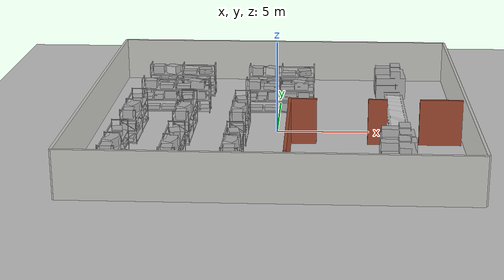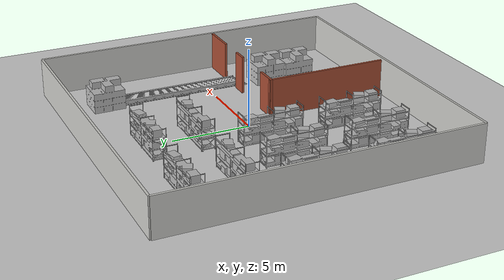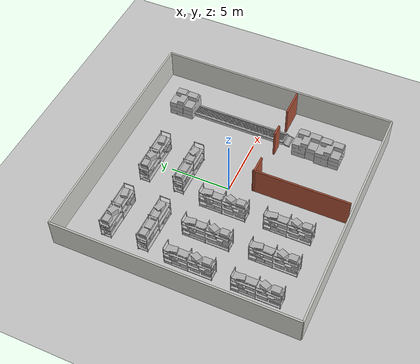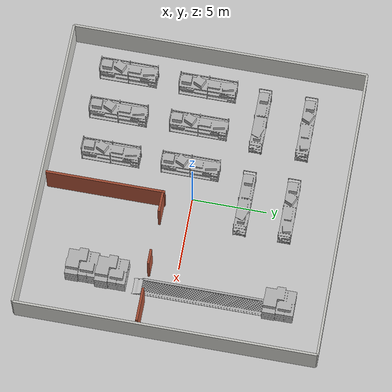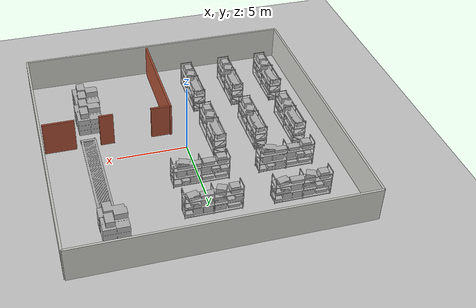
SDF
<sdf version="1.7">
 <world name="default">
  <model name="ground_plane">
   <static>1</static>
   <link name="link">
    <collision name="collision">
     <geometry><plane><normal>0 0 1</normal><size>100 100</size></plane></geometry>
     <surface><friction><ode><mu>100</mu><mu2>50</mu2></ode></friction></surface>
    </collision>
    <visual name="visual">
     <cast_shadows>0</cast_shadows>
     <geometry><plane><normal>0 0 1</normal><size>100 100</size></plane></geometry>
     <material>
      <script><uri>file://media/materials/scripts/gazebo.material</uri><name>Gazebo/Grey</name></script>
     </material>
    </visual>
   </link>
  </model>
  <model name="shipping_container_conveyor_ariac">
   <static>1</static>
   <link name="link">
    <collision name="collision_belt_side_front">
     <pose>1.191 1.6275 0.32 0 -0 0</pose>
     <geometry><box><size>0.137 7.98 0.3</size></box></geometry>
    </collision>
    <collision name="collision_belt_side_back">
     <pose>0.268 1.6275 0.32 0 -0 0</pose>
     <geometry><box><size>0.145 7.98 0.3</size></box></geometry>
    </collision>
    <visual name="visual">
     <geometry>
      <mesh>
       <scale>1.3 0.7 1</scale>
       <uri>model://sim_env/models/shipping_container_conveyor_ariac/meshes/ShippingContainer_Textured.obj</uri>
      </mesh>
     </geometry>
    </visual>
   </link>
   <pose>5.94716 0.254888 -0.15 0 -0 0</pose>
  </model>
  <model name="aws_robomaker_warehouse_ClutteringC_01">
   <link name="link">
    <inertial>
     <mass>1</mass>
     <inertia><ixx>1.558</ixx><ixy>0</ixy><ixz>0</ixz><iyy>1.821</iyy><iyz>0</iyz><izz>1.892</izz></inertia>
    </inertial>
    <collision name="collision">
     <geometry>
      <mesh>
       <uri>model://sim_env/models/aws_robomaker_warehouse_ClutteringC_01/meshes/aws_robomaker_warehouse_ClutteringC_01_collision.DAE</uri>
       <scale>1 1 1</scale>
      </mesh>
     </geometry>
     <surface>
      <friction>
       <ode><mu>0.6</mu><mu2>0.6</mu2><fdir1>0 0 0</fdir1><slip1>0</slip1><slip2>0</slip2></ode>
       <torsional>
        <coefficient>1</coefficient>
        <patch_radius>0</patch_radius>
        <surface_radius>0</surface_radius>
        <use_patch_radius>1</use_patch_radius>
        <ode><slip>0</slip></ode>
       </torsional>
      </friction>
     </surface>
    </collision>
    <visual name="visual">
     <geometry>
      <mesh>
       <uri>model://sim_env/models/aws_robomaker_warehouse_ClutteringC_01/meshes/aws_robomaker_warehouse_ClutteringC_01_visual.DAE</uri>
      </mesh>
     </geometry>
     <meta><layer>1</layer></meta>
    </visual>
   </link>
   <static>1</static>
   <pose>6.33701 -4.2 0 0 -0 0</pose>
  </model>
  <model name="aws_robomaker_warehouse_ShelfE_01">
   <link name="link">
    <inertial>
     <mass>30</mass>
     <inertia><ixx>907.144</ixx><ixy>0</ixy><ixz>0</ixz><iyy>104.95</iyy><iyz>0</iyz><izz>824.248</izz></inertia>
    </inertial>
    <collision name="collision">
     <geometry>
      <mesh>
       <uri>model://sim_env/models/aws_robomaker_warehouse_ShelfE_01/meshes/aws_robomaker_warehouse_ShelfE_01_collision.DAE</uri>
       <scale>1 1 1</scale>
      </mesh>
     </geometry>
     <surface>
      <friction><ode><mu>0.2</mu><mu2>0.2</mu2><fdir1>0 0 0</fdir1><slip1>0</slip1><slip2>0</slip2></ode></friction>
     </surface>
    </collision>
    <visual name="visual">
     <geometry>
      <mesh>
       <uri>model://sim_env/models/aws_robomaker_warehouse_ShelfE_01/meshes/aws_robomaker_warehouse_ShelfE_01_visual.DAE</uri>
      </mesh>
     </geometry>
     <meta><layer>1</layer></meta>
    </visual>
   </link>
   <static>1</static>
   <pose>-6 3.5 -0.7 0 -0 0</pose>
  </model>
  <model name="aws_robomaker_warehouse_ShelfE_01_0">
   <link name="link">
    <inertial>
     <mass>30</mass>
     <inertia><ixx>907.144</ixx><ixy>0</ixy><ixz>0</ixz><iyy>104.95</iyy><iyz>0</iyz><izz>824.248</izz></inertia>
    </inertial>
    <collision name="collision">
     <geometry>
      <mesh>
       <uri>model://sim_env/models/aws_robomaker_warehouse_ShelfE_01/meshes/aws_robomaker_warehouse_ShelfE_01_collision.DAE</uri>
       <scale>1 1 1</scale>
      </mesh>
     </geometry>
     <surface>
      <friction><ode><mu>0.2</mu><mu2>0.2</mu2><fdir1>0 0 0</fdir1><slip1>0</slip1><slip2>0</slip2></ode></friction>
     </surface>
    </collision>
    <visual name="visual">
     <geometry>
      <mesh>
       <uri>model://sim_env/models/aws_robomaker_warehouse_ShelfE_01/meshes/aws_robomaker_warehouse_ShelfE_01_visual.DAE</uri>
      </mesh>
     </geometry>
     <meta><layer>1</layer></meta>
    </visual>
   </link>
   <static>1</static>
   <pose>0 3.5 -0.7 0 -0 0</pose>
  </model>
  <model name="aws_robomaker_warehouse_ShelfD_01">
   <link name="link">
    <inertial>
     <mass>30</mass>
     <inertia><ixx>907.144</ixx><ixy>0</ixy><ixz>0</ixz><iyy>104.95</iyy><iyz>0</iyz><izz>824.248</izz></inertia>
    </inertial>
    <collision name="collision">
     <geometry>
      <mesh>
       <uri>model://sim_env/models/aws_robomaker_warehouse_ShelfD_01/meshes/aws_robomaker_warehouse_ShelfD_01_collision.DAE</uri>
       <scale>1 1 1</scale>
      </mesh>
     </geometry>
     <surface>
      <friction><ode><mu>0.2</mu><mu2>0.2</mu2><fdir1>0 0 0</fdir1><slip1>0</slip1><slip2>0</slip2></ode></friction>
     </surface>
    </collision>
    <visual name="visual">
     <geometry>
      <mesh>
       <uri>model://sim_env/models/aws_robomaker_warehouse_ShelfD_01/meshes/aws_robomaker_warehouse_ShelfD_01_visual.DAE</uri>
      </mesh>
     </geometry>
     <meta><layer>1</layer></meta>
    </visual>
   </link>
   <static>1</static>
   <pose>-6 6.63287 -0.7 0 -0 0</pose>
  </model>
  <model name="aws_robomaker_warehouse_ShelfD_01_0">
   <link name="link">
    <inertial>
     <mass>30</mass>
     <inertia><ixx>907.144</ixx><ixy>0</ixy><ixz>0</ixz><iyy>104.95</iyy><iyz>0</iyz><izz>824.248</izz></inertia>
    </inertial>
    <collision name="collision">
     <geometry>
      <mesh>
       <uri>model://sim_env/models/aws_robomaker_warehouse_ShelfD_01/meshes/aws_robomaker_warehouse_ShelfD_01_collision.DAE</uri>
       <scale>1 1 1</scale>
      </mesh>
     </geometry>
     <surface>
      <friction><ode><mu>0.2</mu><mu2>0.2</mu2><fdir1>0 0 0</fdir1><slip1>0</slip1><slip2>0</slip2></ode></friction>
     </surface>
    </collision>
    <visual name="visual">
     <geometry>
      <mesh>
       <uri>model://sim_env/models/aws_robomaker_warehouse_ShelfD_01/meshes/aws_robomaker_warehouse_ShelfD_01_visual.DAE</uri>
      </mesh>
     </geometry>
     <meta><layer>1</layer></meta>
    </visual>
   </link>
   <static>1</static>
   <pose>0 6.5 -0.7 0 -0 0</pose>
  </model>
  <model name="aws_robomaker_warehouse_ShelfD_01_1">
   <link name="link">
    <inertial>
     <mass>30</mass>
     <inertia><ixx>907.144</ixx><ixy>0</ixy><ixz>0</ixz><iyy>104.95</iyy><iyz>0</iyz><izz>824.248</izz></inertia>
    </inertial>
    <collision name="collision">
     <geometry>
      <mesh>
       <uri>model://sim_env/models/aws_robomaker_warehouse_ShelfD_01/meshes/aws_robomaker_warehouse_ShelfD_01_collision.DAE</uri>
       <scale>1 1 1</scale>
      </mesh>
     </geometry>
     <surface>
      <friction><ode><mu>0.2</mu><mu2>0.2</mu2><fdir1>0 0 0</fdir1><slip1>0</slip1><slip2>0</slip2></ode></friction>
     </surface>
    </collision>
    <visual name="visual">
     <geometry>
      <mesh>
       <uri>model://sim_env/models/aws_robomaker_warehouse_ShelfD_01/meshes/aws_robomaker_warehouse_ShelfD_01_visual.DAE</uri>
      </mesh>
     </geometry>
     <meta><layer>1</layer></meta>
    </visual>
   </link>
   <static>1</static>
   <pose>-2 -0.5 -0.7 0 -0 1.57</pose>
  </model>
  <model name="aws_robomaker_warehouse_ShelfD_01_1_clone">
   <link name="link">
    <inertial>
     <mass>30</mass>
     <inertia><ixx>907.144</ixx><ixy>0</ixy><ixz>0</ixz><iyy>104.95</iyy><iyz>0</iyz><izz>824.248</izz></inertia>
    </inertial>
    <collision name="collision">
     <geometry>
      <mesh>
       <uri>model://sim_env/models/aws_robomaker_warehouse_ShelfD_01/meshes/aws_robomaker_warehouse_ShelfD_01_collision.DAE</uri>
       <scale>1 1 1</scale>
      </mesh>
     </geometry>
     <surface>
      <friction><ode><mu>0.2</mu><mu2>0.2</mu2><fdir1>0 0 0</fdir1><slip1>0</slip1><slip2>0</slip2></ode></friction>
     </surface>
    </collision>
    <visual name="visual">
     <geometry>
      <mesh>
       <uri>model://sim_env/models/aws_robomaker_warehouse_ShelfD_01/meshes/aws_robomaker_warehouse_ShelfD_01_visual.DAE</uri>
      </mesh>
     </geometry>
     <meta><layer>1</layer></meta>
    </visual>
   </link>
   <static>1</static>
   <pose>-5 -0.5 -0.7 0 -0 1.57</pose>
  </model>
  <model name="aws_robomaker_warehouse_ShelfD_01_1_clone_0">
   <link name="link">
    <inertial>
     <mass>30</mass>
     <inertia><ixx>907.144</ixx><ixy>0</ixy><ixz>0</ixz><iyy>104.95</iyy><iyz>0</iyz><izz>824.248</izz></inertia>
    </inertial>
    <collision name="collision">
     <geometry>
      <mesh>
       <uri>model://sim_env/models/aws_robomaker_warehouse_ShelfD_01/meshes/aws_robomaker_warehouse_ShelfD_01_collision.DAE</uri>
       <scale>1 1 1</scale>
      </mesh>
     </geometry>
     <surface>
      <friction><ode><mu>0.2</mu><mu2>0.2</mu2><fdir1>0 0 0</fdir1><slip1>0</slip1><slip2>0</slip2></ode></friction>
     </surface>
    </collision>
    <visual name="visual">
     <geometry>
      <mesh>
       <uri>model://sim_env/models/aws_robomaker_warehouse_ShelfD_01/meshes/aws_robomaker_warehouse_ShelfD_01_visual.DAE</uri>
      </mesh>
     </geometry>
     <meta><layer>1</layer></meta>
    </visual>
   </link>
   <static>1</static>
   <pose>-2 -5.88998 -0.7 0 -0 1.57</pose>
  </model>
  <model name="aws_robomaker_warehouse_ShelfD_01_1_clone_1">
   <link name="link">
    <inertial>
     <mass>30</mass>
     <inertia><ixx>907.144</ixx><ixy>0</ixy><ixz>0</ixz><iyy>104.95</iyy><iyz>0</iyz><izz>824.248</izz></inertia>
    </inertial>
    <collision name="collision">
     <geometry>
      <mesh>
       <uri>model://sim_env/models/aws_robomaker_warehouse_ShelfD_01/meshes/aws_robomaker_warehouse_ShelfD_01_collision.DAE</uri>
       <scale>1 1 1</scale>
      </mesh>
     </geometry>
     <surface>
      <friction><ode><mu>0.2</mu><mu2>0.2</mu2><fdir1>0 0 0</fdir1><slip1>0</slip1><slip2>0</slip2></ode></friction>
     </surface>
    </collision>
    <visual name="visual">
     <geometry>
      <mesh>
       <uri>model://sim_env/models/aws_robomaker_warehouse_ShelfD_01/meshes/aws_robomaker_warehouse_ShelfD_01_visual.DAE</uri>
      </mesh>
     </geometry>
     <meta><layer>1</layer></meta>
    </visual>
   </link>
   <static>1</static>
   <pose>-5 -5.9682 -0.7 0 -0 1.57</pose>
  </model>
  <model name="aws_robomaker_warehouse_ClutteringC_01_1">
   <link name="link">
    <inertial>
     <mass>1</mass>
     <inertia><ixx>1.558</ixx><ixy>0</ixy><ixz>0</ixz><iyy>1.821</iyy><iyz>0</iyz><izz>1.892</izz></inertia>
    </inertial>
    <collision name="collision">
     <geometry>
      <mesh>
       <uri>model://sim_env/models/aws_robomaker_warehouse_ClutteringC_01/meshes/aws_robomaker_warehouse_ClutteringC_01_collision.DAE</uri>
       <scale>1 1 1</scale>
      </mesh>
     </geometry>
     <surface>
      <friction>
       <ode><mu>0.6</mu><mu2>0.6</mu2><fdir1>0 0 0</fdir1><slip1>0</slip1><slip2>0</slip2></ode>
       <torsional>
        <coefficient>1</coefficient>
        <patch_radius>0</patch_radius>
        <surface_radius>0</surface_radius>
        <use_patch_radius>1</use_patch_radius>
        <ode><slip>0</slip></ode>
       </torsional>
      </friction>
     </surface>
    </collision>
    <visual name="visual">
     <geometry>
      <mesh>
       <uri>model://sim_env/models/aws_robomaker_warehouse_ClutteringC_01/meshes/aws_robomaker_warehouse_ClutteringC_01_visual.DAE</uri>
      </mesh>
     </geometry>
     <meta><layer>1</layer></meta>
    </visual>
   </link>
   <static>1</static>
   <pose>6.49861 6.95891 0 0 -0 0</pose>
  </model>
  <model name="aws_robomaker_warehouse_ClutteringC_01_0">
   <link name="link">
    <inertial>
     <mass>1</mass>
     <inertia><ixx>1.558</ixx><ixy>0</ixy><ixz>0</ixz><iyy>1.821</iyy><iyz>0</iyz><izz>1.892</izz></inertia>
    </inertial>
    <collision name="collision">
     <geometry>
      <mesh>
       <uri>model://sim_env/models/aws_robomaker_warehouse_ClutteringC_01/meshes/aws_robomaker_warehouse_ClutteringC_01_collision.DAE</uri>
       <scale>1 1 1</scale>
      </mesh>
     </geometry>
     <surface>
      <friction>
       <ode><mu>0.6</mu><mu2>0.6</mu2><fdir1>0 0 0</fdir1><slip1>0</slip1><slip2>0</slip2></ode>
       <torsional>
        <coefficient>1</coefficient>
        <patch_radius>0</patch_radius>
        <surface_radius>0</surface_radius>
        <use_patch_radius>1</use_patch_radius>
        <ode><slip>0</slip></ode>
       </torsional>
      </friction>
     </surface>
    </collision>
    <visual name="visual">
     <geometry>
      <mesh>
       <uri>model://sim_env/models/aws_robomaker_warehouse_ClutteringC_01/meshes/aws_robomaker_warehouse_ClutteringC_01_visual.DAE</uri>
      </mesh>
     </geometry>
     <meta><layer>1</layer></meta>
    </visual>
   </link>
   <static>1</static>
   <pose>6.2 -6.2 0 0 -0 0</pose>
  </model>
  <model name="aws_robomaker_warehouse_ShelfD_01_1_clone_1_clone">
   <link name="link">
    <inertial>
     <mass>30</mass>
     <inertia><ixx>907.144</ixx><ixy>0</ixy><ixz>0</ixz><iyy>104.95</iyy><iyz>0</iyz><izz>824.248</izz></inertia>
    </inertial>
    <collision name="collision">
     <geometry>
      <mesh>
       <uri>model://sim_env/models/aws_robomaker_warehouse_ShelfD_01/meshes/aws_robomaker_warehouse_ShelfD_01_collision.DAE</uri>
       <scale>1 1 1</scale>
      </mesh>
     </geometry>
     <surface>
      <friction><ode><mu>0.2</mu><mu2>0.2</mu2><fdir1>0 0 0</fdir1><slip1>0</slip1><slip2>0</slip2></ode></friction>
     </surface>
    </collision>
    <visual name="visual">
     <geometry>
      <mesh>
       <uri>model://sim_env/models/aws_robomaker_warehouse_ShelfD_01/meshes/aws_robomaker_warehouse_ShelfD_01_visual.DAE</uri>
      </mesh>
     </geometry>
     <meta><layer>1</layer></meta>
    </visual>
   </link>
   <static>1</static>
   <pose>-7.95437 -5.83764 -0.7 0 -0 1.57</pose>
  </model>
  <model name="aws_robomaker_warehouse_ShelfD_01_1_clone_1_clone_0">
   <link name="link">
    <inertial>
     <mass>30</mass>
     <inertia><ixx>907.144</ixx><ixy>0</ixy><ixz>0</ixz><iyy>104.95</iyy><iyz>0</iyz><izz>824.248</izz></inertia>
    </inertial>
    <collision name="collision">
     <geometry>
      <mesh>
       <uri>model://sim_env/models/aws_robomaker_warehouse_ShelfD_01/meshes/aws_robomaker_warehouse_ShelfD_01_collision.DAE</uri>
       <scale>1 1 1</scale>
      </mesh>
     </geometry>
     <surface>
      <friction><ode><mu>0.2</mu><mu2>0.2</mu2><fdir1>0 0 0</fdir1><slip1>0</slip1><slip2>0</slip2></ode></friction>
     </surface>
    </collision>
    <visual name="visual">
     <geometry>
      <mesh>
       <uri>model://sim_env/models/aws_robomaker_warehouse_ShelfD_01/meshes/aws_robomaker_warehouse_ShelfD_01_visual.DAE</uri>
      </mesh>
     </geometry>
     <meta><layer>1</layer></meta>
    </visual>
   </link>
   <static>1</static>
   <pose>-7.82227 -0.391682 -0.7 0 -0 1.57</pose>
  </model>
  <model name="single_wall">
   <pose>-10 0 0 0 -0 1.57</pose>
   <link name="Wall_3">
    <collision name="Wall_3_Collision">
     <geometry><box><size>20 0.15 2.5</size></box></geometry>
     <pose>0 0 1.25 0 -0 0</pose>
    </collision>
    <visual name="Wall_3_Visual">
     <pose>0 0 1.25 0 -0 0</pose>
     <geometry><box><size>20 0.15 2.5</size></box></geometry>
     <material>
      <script><uri>file://media/materials/scripts/gazebo.material</uri><name>Gazebo/CeilingTiled</name></script>
      <ambient>1 1 1 1</ambient>
     </material>
     <meta><layer>0</layer></meta>
    </visual>
   </link>
   <static>1</static>
  </model>
  <model name="single_wall_clone">
   <pose>0 10 0 0 -0 0</pose>
   <link name="Wall_3">
    <collision name="Wall_3_Collision">
     <geometry><box><size>20 0.15 2.5</size></box></geometry>
     <pose>0 0 1.25 0 -0 0</pose>
    </collision>
    <visual name="Wall_3_Visual">
     <pose>0 0 1.25 0 -0 0</pose>
     <geometry><box><size>20 0.15 2.5</size></box></geometry>
     <material>
      <script><uri>file://media/materials/scripts/gazebo.material</uri><name>Gazebo/CeilingTiled</name></script>
      <ambient>1 1 1 1</ambient>
     </material>
     <meta><layer>0</layer></meta>
    </visual>
   </link>
   <static>1</static>
  </model>
  <model name="single_wall_clone_0">
   <pose>0 -10 0 0 -0 3.14</pose>
   <link name="Wall_3">
    <collision name="Wall_3_Collision">
     <geometry><box><size>20 0.15 2.5</size></box></geometry>
     <pose>0 0 1.25 0 -0 0</pose>
    </collision>
    <visual name="Wall_3_Visual">
     <pose>0 0 1.25 0 -0 0</pose>
     <geometry><box><size>20 0.15 2.5</size></box></geometry>
     <material>
      <script><uri>file://media/materials/scripts/gazebo.material</uri><name>Gazebo/CeilingTiled</name></script>
      <ambient>1 1 1 1</ambient>
     </material>
     <meta><layer>0</layer></meta>
    </visual>
   </link>
   <static>1</static>
  </model>
  <model name="single_wall_clone_1">
   <pose>10 0 0 0 0 -1.57</pose>
   <link name="Wall_3">
    <collision name="Wall_3_Collision">
     <geometry><box><size>20 0.15 2.5</size></box></geometry>
     <pose>0 0 1.25 0 -0 0</pose>
    </collision>
    <visual name="Wall_3_Visual">
     <pose>0 0 1.25 0 -0 0</pose>
     <geometry><box><size>20 0.15 2.5</size></box></geometry>
     <material>
      <script><uri>file://media/materials/scripts/gazebo.material</uri><name>Gazebo/CeilingTiled</name></script>
      <ambient>1 1 1 1</ambient>
     </material>
     <meta><layer>0</layer></meta>
    </visual>
   </link>
   <static>1</static>
  </model>
  <model name="single_wall_1">
   <pose>0.7388 -5.70207 0 0 0 -1.57</pose>
   <link name="Wall_9">
    <collision name="Wall_9_Collision">
     <geometry><box><size>8 0.15 2.5</size></box></geometry>
     <pose>0 0 1.25 0 -0 0</pose>
    </collision>
    <visual name="Wall_9_Visual">
     <pose>0 0 1.25 0 -0 0</pose>
     <geometry><box><size>8 0.15 2.5</size></box></geometry>
     <material>
      <script><uri>file://media/materials/scripts/gazebo.material</uri><name>Gazebo/Bricks</name></script>
      <ambient>1 1 1 1</ambient>
     </material>
     <meta><layer>0</layer></meta>
    </visual>
   </link>
   <static>1</static>
  </model>
  <model name="single_wall_1_clone_clone">
   <link name="Wall_9">
    <inertial>
     <inertia><ixx>0</ixx><ixy>0</ixy><ixz>0</ixz><iyy>0</iyy><iyz>0</iyz><izz>0</izz></inertia>
     <mass>0</mass>
    </inertial>
    <visual name="Wall_9_Visual">
     <pose>0 0 1.25 0 -0 0</pose>
     <geometry><box><size>1 0.15 2.5</size></box></geometry>
     <material>
      <script><uri>file://media/materials/scripts/gazebo.material</uri><name>Gazebo/Bricks</name></script>
      <ambient>1 1 1 1</ambient>
      <shader type="pixel"><normal_map>__default__</normal_map></shader>
      <diffuse>1 1 1 1</diffuse>
      <specular>0.2 0.2 0.2 1</specular>
      <emissive>0 0 0 1</emissive>
     </material>
     <meta><layer>0</layer></meta>
    </visual>
    <collision name="Wall_9_Collision">
     <pose>0 0 1.25 0 -0 0</pose>
     <geometry><box><size>1 0.15 2.5</size></box></geometry>
     <surface>
      <friction>
       <ode><mu>1</mu><mu2>1</mu2><fdir1>0 0 0</fdir1><slip1>0</slip1><slip2>0</slip2></ode>
       <torsional>
        <coefficient>1</coefficient>
        <patch_radius>0</patch_radius>
        <surface_radius>0</surface_radius>
        <use_patch_radius>1</use_patch_radius>
        <ode><slip>0</slip></ode>
       </torsional>
      </friction>
      <bounce><restitution_coefficient>0</restitution_coefficient><threshold>1e+06</threshold></bounce>
      <contact>
       <collide_without_contact>0</collide_without_contact>
       <collide_without_contact_bitmask>1</collide_without_contact_bitmask>
       <collide_bitmask>1</collide_bitmask>
       <ode>
        <soft_cfm>0</soft_cfm>
        <soft_erp>0.2</soft_erp>
        <kp>1e+13</kp>
        <kd>1</kd>
        <max_vel>0.01</max_vel>
        <min_depth>0</min_depth>
       </ode>
       <bullet>
        <split_impulse>1</split_impulse>
        <split_impulse_penetration_threshold>-0.01</split_impulse_penetration_threshold>
        <soft_cfm>0</soft_cfm>
        <soft_erp>0.2</soft_erp>
        <kp>1e+13</kp>
        <kd>1</kd>
       </bullet>
      </contact>
     </surface>
    </collision>
   </link>
   <static>1</static>
   <pose>5.36173 -1.85107 0 0 -0 3.14</pose>
  </model>
  <model name="single_wall_1_clone">
   <link name="Wall_9">
    <inertial>
     <inertia><ixx>0</ixx><ixy>0</ixy><ixz>0</ixz><iyy>0</iyy><iyz>0</iyz><izz>0</izz></inertia>
     <mass>0</mass>
    </inertial>
    <visual name="Wall_9_Visual">
     <pose>0 0 1.25 0 -0 0</pose>
     <geometry><box><size>1.5 0.15 2.5</size></box></geometry>
     <material>
      <script><uri>file://media/materials/scripts/gazebo.material</uri><name>Gazebo/Bricks</name></script>
      <ambient>1 1 1 1</ambient>
      <shader type="pixel"><normal_map>__default__</normal_map></shader>
      <diffuse>1 1 1 1</diffuse>
      <specular>0.2 0.2 0.2 1</specular>
      <emissive>0 0 0 1</emissive>
     </material>
     <meta><layer>0</layer></meta>
    </visual>
    <collision name="Wall_9_Collision">
     <pose>0 0 1.25 0 -0 0</pose>
     <geometry><box><size>1 0.15 2.5</size></box></geometry>
     <surface>
      <friction>
       <ode><mu>1</mu><mu2>1</mu2><fdir1>0 0 0</fdir1><slip1>0</slip1><slip2>0</slip2></ode>
       <torsional>
        <coefficient>1</coefficient>
        <patch_radius>0</patch_radius>
        <surface_radius>0</surface_radius>
        <use_patch_radius>1</use_patch_radius>
        <ode><slip>0</slip></ode>
       </torsional>
      </friction>
      <bounce><restitution_coefficient>0</restitution_coefficient><threshold>1e+06</threshold></bounce>
      <contact>
       <collide_without_contact>0</collide_without_contact>
       <collide_without_contact_bitmask>1</collide_without_contact_bitmask>
       <collide_bitmask>1</collide_bitmask>
       <ode>
        <soft_cfm>0</soft_cfm>
        <soft_erp>0.2</soft_erp>
        <kp>1e+13</kp>
        <kd>1</kd>
        <max_vel>0.01</max_vel>
        <min_depth>0</min_depth>
       </ode>
       <bullet>
        <split_impulse>1</split_impulse>
        <split_impulse_penetration_threshold>-0.01</split_impulse_penetration_threshold>
        <soft_cfm>0</soft_cfm>
        <soft_erp>0.2</soft_erp>
        <kp>1e+13</kp>
        <kd>1</kd>
       </bullet>
      </contact>
     </surface>
    </collision>
   </link>
   <static>1</static>
   <pose>1.40743 -1.85107 0 0 -0 3.14</pose>
  </model>
  <model name="single_wall_1_clone_clone_clone">
   <link name="Wall_9">
    <inertial>
     <inertia><ixx>0</ixx><ixy>0</ixy><ixz>0</ixz><iyy>0</iyy><iyz>0</iyz><izz>0</izz></inertia>
     <mass>0</mass>
    </inertial>
    <visual name="Wall_9_Visual">
     <pose>0 0 1.25 0 -0 0</pose>
     <geometry><box><size>2.25 0.15 2.5</size></box></geometry>
     <material>
      <script><uri>file://media/materials/scripts/gazebo.material</uri><name>Gazebo/Bricks</name></script>
      <ambient>1 1 1 1</ambient>
      <shader type="pixel"><normal_map>__default__</normal_map></shader>
      <diffuse>1 1 1 1</diffuse>
      <specular>0.2 0.2 0.2 1</specular>
      <emissive>0 0 0 1</emissive>
     </material>
     <meta><layer>0</layer></meta>
    </visual>
    <collision name="Wall_9_Collision">
     <pose>0 0 1.25 0 -0 0</pose>
     <geometry><box><size>2.25 0.15 2.5</size></box></geometry>
     <surface>
      <friction>
       <ode><mu>1</mu><mu2>1</mu2><fdir1>0 0 0</fdir1><slip1>0</slip1><slip2>0</slip2></ode>
       <torsional>
        <coefficient>1</coefficient>
        <patch_radius>0</patch_radius>
        <surface_radius>0</surface_radius>
        <use_patch_radius>1</use_patch_radius>
        <ode><slip>0</slip></ode>
       </torsional>
      </friction>
      <bounce><restitution_coefficient>0</restitution_coefficient><threshold>1e+06</threshold></bounce>
      <contact>
       <collide_without_contact>0</collide_without_contact>
       <collide_without_contact_bitmask>1</collide_without_contact_bitmask>
       <collide_bitmask>1</collide_bitmask>
       <ode>
        <soft_cfm>0</soft_cfm>
        <soft_erp>0.2</soft_erp>
        <kp>1e+13</kp>
        <kd>1</kd>
        <max_vel>0.01</max_vel>
        <min_depth>0</min_depth>
       </ode>
       <bullet>
        <split_impulse>1</split_impulse>
        <split_impulse_penetration_threshold>-0.01</split_impulse_penetration_threshold>
        <soft_cfm>0</soft_cfm>
        <soft_erp>0.2</soft_erp>
        <kp>1e+13</kp>
        <kd>1</kd>
       </bullet>
      </contact>
     </surface>
    </collision>
   </link>
   <static>1</static>
   <pose>8.68743 -1.85107 0 0 -0 3.14</pose>
  </model>
 </world>
</sdf>
